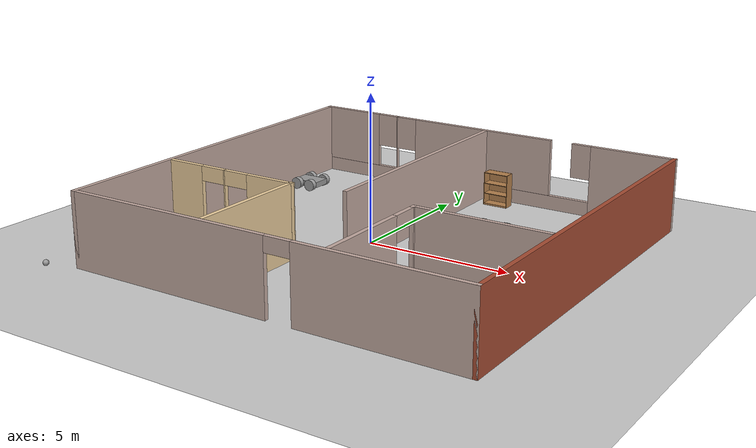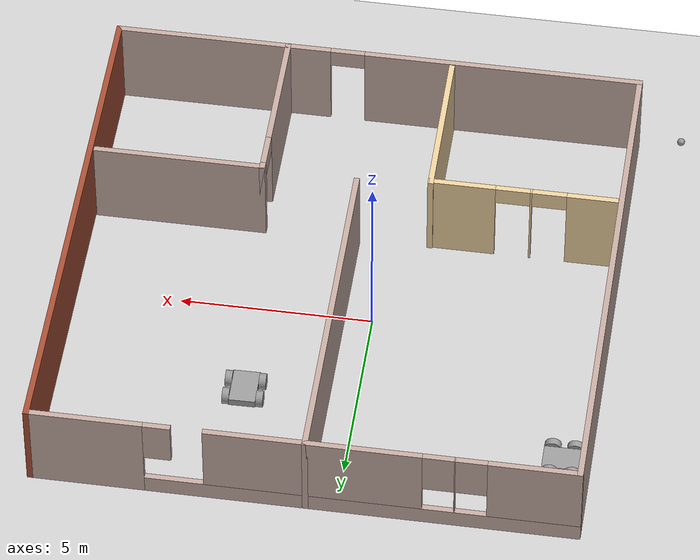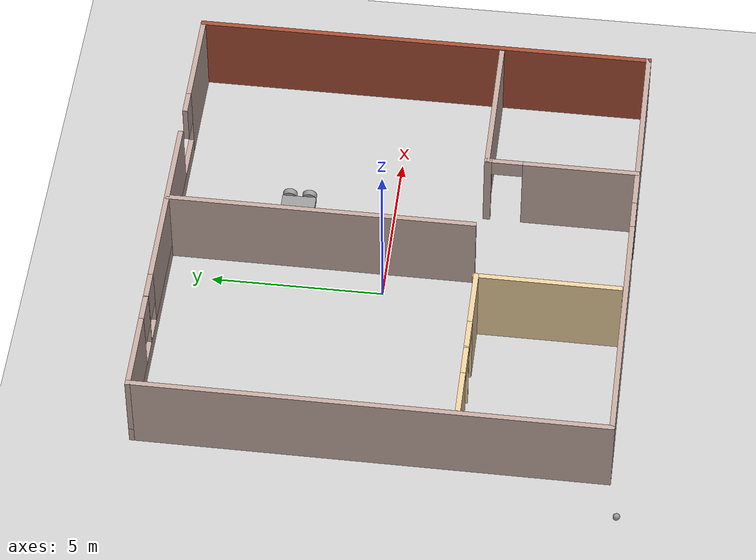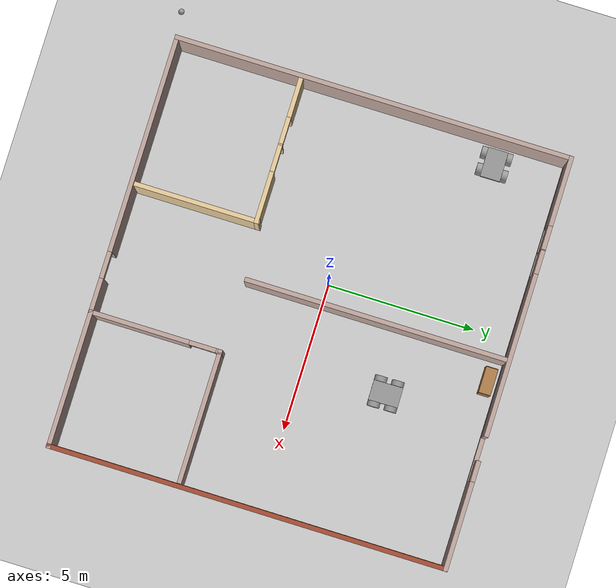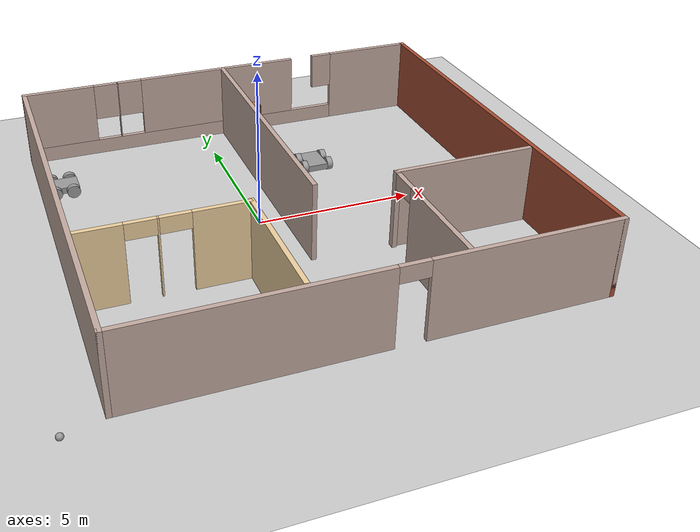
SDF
<sdf version="1.6">
 <world name="default">
  <plugin name="welcome_message" filename="libwelcome_message.so"/>
  <light name="sun" type="directional">
   <pose>0 0 10 0 -0 0</pose>
   <diffuse>0.8 0.8 0.8 1</diffuse>
   <specular>0.1 0.1 0.1 1</specular>
   <attenuation>
    <range>1000</range>
    <constant>0.9</constant>
    <linear>0.01</linear>
    <quadratic>0.001</quadratic>
   </attenuation>
   <direction>-0.5 0.5 -1</direction>
  </light>
  <model name="ground_plane">
   <static>1</static>
   <link name="link">
    <collision name="collision">
     <geometry><plane><normal>0 0 1</normal><size>100 100</size></plane></geometry>
     <surface><friction><ode><mu>100</mu><mu2>50</mu2></ode></friction></surface>
    </collision>
    <visual name="visual">
     <cast_shadows>0</cast_shadows>
     <geometry><plane><normal>0 0 1</normal><size>100 100</size></plane></geometry>
     <material>
      <script><uri>file://media/materials/scripts/gazebo.material</uri><name>Gazebo/Grey</name></script>
     </material>
    </visual>
   </link>
  </model>
  <gravity>0 0 -9.8</gravity>
  <magnetic_field>6e-06 2.3e-05 -4.2e-05</magnetic_field>
  <atmosphere type="adiabatic"/>
  <physics name="default_physics" default="0" type="ode">
   <max_step_size>0.001</max_step_size>
   <real_time_factor>1</real_time_factor>
   <real_time_update_rate>1000</real_time_update_rate>
  </physics>
  <scene><ambient>0.4 0.4 0.4 1</ambient><background>0.7 0.7 0.7 1</background><shadows>1</shadows></scene>
  <spherical_coordinates>
   <surface_model>EARTH_WGS84</surface_model>
   <latitude_deg>0</latitude_deg>
   <longitude_deg>0</longitude_deg>
   <elevation>0</elevation>
   <heading_deg>0</heading_deg>
  </spherical_coordinates>
  <model name="Apartment">
   <pose>0.8489 -0.348456 0.074794 0.001273 -0 0</pose>
   <link name="Wall_0">
    <collision name="Wall_0_Collision">
     <geometry><box><size>13.5 0.15 2.5</size></box></geometry>
     <pose>0 0 1.25 0 -0 0</pose>
    </collision>
    <visual name="Wall_0_Visual">
     <pose>0 0 1.25 0 -0 0</pose>
     <geometry><box><size>13.5 0.15 2.5</size></box></geometry>
     <material>
      <script><uri>file://media/materials/scripts/gazebo.material</uri><name>Gazebo/Grey</name></script>
      <ambient>0.760784 0.662745 0.627451 1</ambient>
     </material>
    </visual>
    <pose>-6.925 0 0 0 0 -1.5708</pose>
   </link>
   <link name="Wall_1">
    <pose>0 -6.675 0 0 -0 0</pose>
    <visual name="Wall_1_Visual_0">
     <pose>-3.31784 0 1.25 0 -0 0</pose>
     <geometry><box><size>7.36433 0.15 2.5</size></box></geometry>
     <material>
      <script><uri>file://media/materials/scripts/gazebo.material</uri><name>Gazebo/Grey</name></script>
      <ambient>0.760784 0.662745 0.627451 1</ambient>
     </material>
    </visual>
    <collision name="Wall_1_Collision_0">
     <geometry><box><size>7.36433 0.15 2.5</size></box></geometry>
     <pose>-3.31784 0 1.25 0 -0 0</pose>
    </collision>
    <visual name="Wall_1_Visual_1">
     <pose>4.13216 0 1.25 0 -0 0</pose>
     <geometry><box><size>5.73567 0.15 2.5</size></box></geometry>
     <material>
      <script><uri>file://media/materials/scripts/gazebo.material</uri><name>Gazebo/Grey</name></script>
      <ambient>0.760784 0.662745 0.627451 1</ambient>
     </material>
    </visual>
    <collision name="Wall_1_Collision_1">
     <geometry><box><size>5.73567 0.15 2.5</size></box></geometry>
     <pose>4.13216 0 1.25 0 -0 0</pose>
    </collision>
    <visual name="Wall_1_Visual_2">
     <pose>0.814328 0 2.25 0 -0 0</pose>
     <geometry><box><size>0.9 0.15 0.5</size></box></geometry>
     <material>
      <script><uri>file://media/materials/scripts/gazebo.material</uri><name>Gazebo/Grey</name></script>
      <ambient>0.760784 0.662745 0.627451 1</ambient>
     </material>
    </visual>
    <collision name="Wall_1_Collision_2">
     <geometry><box><size>0.9 0.15 0.5</size></box></geometry>
     <pose>0.814328 0 2.25 0 -0 0</pose>
    </collision>
   </link>
   <link name="Wall_10">
    <pose>-4.3729 -2.44089 0 0 -0 0</pose>
    <visual name="Wall_10_Visual_0">
     <pose>-1.80534 0 1.25 0 -0 0</pose>
     <geometry><box><size>1.33849 0.15 2.5</size></box></geometry>
     <material>
      <script><uri>file://media/materials/scripts/gazebo.material</uri><name>Gazebo/Grey</name></script>
      <ambient>0.921569 0.807843 0.615686 1</ambient>
     </material>
    </visual>
    <collision name="Wall_10_Collision_0">
     <geometry><box><size>1.33849 0.15 2.5</size></box></geometry>
     <pose>-1.80534 0 1.25 0 -0 0</pose>
    </collision>
    <visual name="Wall_10_Visual_1">
     <pose>-0.211947 0 1.25 0 -0 0</pose>
     <geometry><box><size>0.048297 0.15 2.5</size></box></geometry>
     <material>
      <script><uri>file://media/materials/scripts/gazebo.material</uri><name>Gazebo/Grey</name></script>
      <ambient>0.921569 0.807843 0.615686 1</ambient>
     </material>
    </visual>
    <collision name="Wall_10_Collision_1">
     <geometry><box><size>0.048297 0.15 2.5</size></box></geometry>
     <pose>-0.211947 0 1.25 0 -0 0</pose>
    </collision>
    <visual name="Wall_10_Visual_2">
     <pose>1.59339 0 1.25 0 -0 0</pose>
     <geometry><box><size>1.76239 0.15 2.5</size></box></geometry>
     <material>
      <script><uri>file://media/materials/scripts/gazebo.material</uri><name>Gazebo/Grey</name></script>
      <ambient>0.921569 0.807843 0.615686 1</ambient>
     </material>
    </visual>
    <collision name="Wall_10_Collision_2">
     <geometry><box><size>1.76239 0.15 2.5</size></box></geometry>
     <pose>1.59339 0 1.25 0 -0 0</pose>
    </collision>
    <visual name="Wall_10_Visual_3">
     <pose>-0.686096 0 2.25 0 -0 0</pose>
     <geometry><box><size>0.9 0.15 0.5</size></box></geometry>
     <material>
      <script><uri>file://media/materials/scripts/gazebo.material</uri><name>Gazebo/Grey</name></script>
      <ambient>0.921569 0.807843 0.615686 1</ambient>
     </material>
    </visual>
    <collision name="Wall_10_Collision_3">
     <geometry><box><size>0.9 0.15 0.5</size></box></geometry>
     <pose>-0.686096 0 2.25 0 -0 0</pose>
    </collision>
    <visual name="Wall_10_Visual_4">
     <pose>0.262201 0 2.25 0 -0 0</pose>
     <geometry><box><size>0.9 0.15 0.5</size></box></geometry>
     <material>
      <script><uri>file://media/materials/scripts/gazebo.material</uri><name>Gazebo/Grey</name></script>
      <ambient>0.921569 0.807843 0.615686 1</ambient>
     </material>
    </visual>
    <collision name="Wall_10_Collision_4">
     <geometry><box><size>0.9 0.15 0.5</size></box></geometry>
     <pose>0.262201 0 2.25 0 -0 0</pose>
    </collision>
   </link>
   <link name="Wall_11">
    <collision name="Wall_11_Collision">
     <geometry><box><size>4.25 0.15 2.5</size></box></geometry>
     <pose>0 0 1.25 0 -0 0</pose>
    </collision>
    <visual name="Wall_11_Visual">
     <pose>0 0 1.25 0 -0 0</pose>
     <geometry><box><size>4.25 0.15 2.5</size></box></geometry>
     <material>
      <script><uri>file://media/materials/scripts/gazebo.material</uri><name>Gazebo/Grey</name></script>
      <ambient>0.921569 0.807843 0.615686 1</ambient>
     </material>
    </visual>
    <pose>-1.97375 -4.4603 0 0 0 -1.5708</pose>
   </link>
   <link name="Wall_2">
    <collision name="Wall_2_Collision">
     <geometry><box><size>13.5 0.15 2.5</size></box></geometry>
     <pose>0 0 1.25 0 -0 0</pose>
    </collision>
    <visual name="Wall_2_Visual">
     <pose>0 0 1.25 0 -0 0</pose>
     <geometry><box><size>13.5 0.15 2.5</size></box></geometry>
     <material>
      <script><uri>file://media/materials/scripts/gazebo.material</uri><name>Gazebo/Bricks</name></script>
      <ambient>1 1 1 1</ambient>
     </material>
    </visual>
    <pose>6.925 0 0 0 -0 1.5708</pose>
   </link>
   <link name="Wall_3">
    <pose>0 6.675 0 0 -0 3.14159</pose>
    <visual name="Wall_3_Visual_0">
     <pose>-5.49902 0 1.25 0 -0 0</pose>
     <geometry><box><size>3.00196 0.15 2.5</size></box></geometry>
     <material>
      <script><uri>file://media/materials/scripts/gazebo.material</uri><name>Gazebo/Grey</name></script>
      <ambient>0.760784 0.662745 0.627451 1</ambient>
     </material>
    </visual>
    <collision name="Wall_3_Collision_0">
     <geometry><box><size>3.00196 0.15 2.5</size></box></geometry>
     <pose>-5.49902 0 1.25 0 -0 0</pose>
    </collision>
    <visual name="Wall_3_Visual_1">
     <pose>1.50098 0 0.25 0 -0 0</pose>
     <geometry><box><size>10.998 0.15 0.5</size></box></geometry>
     <material>
      <script><uri>file://media/materials/scripts/gazebo.material</uri><name>Gazebo/Grey</name></script>
      <ambient>0.760784 0.662745 0.627451 1</ambient>
     </material>
    </visual>
    <collision name="Wall_3_Collision_1">
     <geometry><box><size>10.998 0.15 0.5</size></box></geometry>
     <pose>1.50098 0 0.25 0 -0 0</pose>
    </collision>
    <visual name="Wall_3_Visual_2">
     <pose>0.25633 0 1.5 0 -0 0</pose>
     <geometry><box><size>5.50159 0.15 2</size></box></geometry>
     <material>
      <script><uri>file://media/materials/scripts/gazebo.material</uri><name>Gazebo/Grey</name></script>
      <ambient>0.760784 0.662745 0.627451 1</ambient>
     </material>
    </visual>
    <collision name="Wall_3_Collision_2">
     <geometry><box><size>5.50159 0.15 2</size></box></geometry>
     <pose>0.25633 0 1.5 0 -0 0</pose>
    </collision>
    <visual name="Wall_3_Visual_3">
     <pose>3.82009 0 1.5 0 -0 0</pose>
     <geometry><box><size>0.025936 0.15 2</size></box></geometry>
     <material>
      <script><uri>file://media/materials/scripts/gazebo.material</uri><name>Gazebo/Grey</name></script>
      <ambient>0.760784 0.662745 0.627451 1</ambient>
     </material>
    </visual>
    <collision name="Wall_3_Collision_3">
     <geometry><box><size>0.025936 0.15 2</size></box></geometry>
     <pose>3.82009 0 1.5 0 -0 0</pose>
    </collision>
    <visual name="Wall_3_Visual_4">
     <pose>5.81653 0 1.5 0 -0 0</pose>
     <geometry><box><size>2.36694 0.15 2</size></box></geometry>
     <material>
      <script><uri>file://media/materials/scripts/gazebo.material</uri><name>Gazebo/Grey</name></script>
      <ambient>0.760784 0.662745 0.627451 1</ambient>
     </material>
    </visual>
    <collision name="Wall_3_Collision_4">
     <geometry><box><size>2.36694 0.15 2</size></box></geometry>
     <pose>5.81653 0 1.5 0 -0 0</pose>
    </collision>
    <visual name="Wall_3_Visual_5">
     <pose>-3.64625 0 1.9 0 -0 0</pose>
     <geometry><box><size>0.703575 0.15 1.2</size></box></geometry>
     <material>
      <script><uri>file://media/materials/scripts/gazebo.material</uri><name>Gazebo/Grey</name></script>
      <ambient>0.760784 0.662745 0.627451 1</ambient>
     </material>
    </visual>
    <collision name="Wall_3_Collision_5">
     <geometry><box><size>0.703575 0.15 1.2</size></box></geometry>
     <pose>-3.64625 0 1.9 0 -0 0</pose>
    </collision>
    <visual name="Wall_3_Visual_6">
     <pose>3.40712 0 1.9 0 -0 0</pose>
     <geometry><box><size>0.8 0.15 1.2</size></box></geometry>
     <material>
      <script><uri>file://media/materials/scripts/gazebo.material</uri><name>Gazebo/Grey</name></script>
      <ambient>0.760784 0.662745 0.627451 1</ambient>
     </material>
    </visual>
    <collision name="Wall_3_Collision_6">
     <geometry><box><size>0.8 0.15 1.2</size></box></geometry>
     <pose>3.40712 0 1.9 0 -0 0</pose>
    </collision>
    <visual name="Wall_3_Visual_7">
     <pose>4.23306 0 1.9 0 -0 0</pose>
     <geometry><box><size>0.8 0.15 1.2</size></box></geometry>
     <material>
      <script><uri>file://media/materials/scripts/gazebo.material</uri><name>Gazebo/Grey</name></script>
      <ambient>0.760784 0.662745 0.627451 1</ambient>
     </material>
    </visual>
    <collision name="Wall_3_Collision_7">
     <geometry><box><size>0.8 0.15 1.2</size></box></geometry>
     <pose>4.23306 0 1.9 0 -0 0</pose>
    </collision>
   </link>
   <link name="Wall_5">
    <collision name="Wall_5_Collision">
     <geometry><box><size>9 0.15 2.5</size></box></geometry>
     <pose>0 0 1.25 0 -0 0</pose>
    </collision>
    <visual name="Wall_5_Visual">
     <pose>0 0 1.25 0 -0 0</pose>
     <geometry><box><size>9 0.15 2.5</size></box></geometry>
     <material>
      <script><uri>file://media/materials/scripts/gazebo.material</uri><name>Gazebo/Grey</name></script>
      <ambient>0.760784 0.662745 0.627451 1</ambient>
     </material>
    </visual>
    <pose>-0.072789 2.25 0 0 0 -1.5708</pose>
   </link>
   <link name="Wall_7">
    <pose>2.40502 -4.48734 0 0 -0 1.5708</pose>
    <visual name="Wall_7_Visual_0">
     <pose>-0.556201 0 1.25 0 -0 0</pose>
     <geometry><box><size>3.3876 0.15 2.5</size></box></geometry>
     <material>
      <script><uri>file://media/materials/scripts/gazebo.material</uri><name>Gazebo/Grey</name></script>
      <ambient>0.760784 0.662745 0.627451 1</ambient>
     </material>
    </visual>
    <collision name="Wall_7_Collision_0">
     <geometry><box><size>3.3876 0.15 2.5</size></box></geometry>
     <pose>-0.556201 0 1.25 0 -0 0</pose>
    </collision>
    <visual name="Wall_7_Visual_1">
     <pose>2.1438 0 1.25 0 -0 0</pose>
     <geometry><box><size>0.212402 0.15 2.5</size></box></geometry>
     <material>
      <script><uri>file://media/materials/scripts/gazebo.material</uri><name>Gazebo/Grey</name></script>
      <ambient>0.760784 0.662745 0.627451 1</ambient>
     </material>
    </visual>
    <collision name="Wall_7_Collision_1">
     <geometry><box><size>0.212402 0.15 2.5</size></box></geometry>
     <pose>2.1438 0 1.25 0 -0 0</pose>
    </collision>
    <visual name="Wall_7_Visual_2">
     <pose>1.5876 0 2.25 0 -0 0</pose>
     <geometry><box><size>0.9 0.15 0.5</size></box></geometry>
     <material>
      <script><uri>file://media/materials/scripts/gazebo.material</uri><name>Gazebo/Grey</name></script>
      <ambient>0.760784 0.662745 0.627451 1</ambient>
     </material>
    </visual>
    <collision name="Wall_7_Collision_2">
     <geometry><box><size>0.9 0.15 0.5</size></box></geometry>
     <pose>1.5876 0 2.25 0 -0 0</pose>
    </collision>
   </link>
   <link name="Wall_8">
    <collision name="Wall_8_Collision">
     <geometry><box><size>4.5 0.15 2.5</size></box></geometry>
     <pose>0 0 1.25 0 -0 0</pose>
    </collision>
    <visual name="Wall_8_Visual">
     <pose>0 0 1.25 0 -0 0</pose>
     <geometry><box><size>4.5 0.15 2.5</size></box></geometry>
     <material>
      <script><uri>file://media/materials/scripts/gazebo.material</uri><name>Gazebo/Grey</name></script>
      <ambient>0.760784 0.662745 0.627451 1</ambient>
     </material>
    </visual>
    <pose>4.58002 -2.31234 0 0 -0 0</pose>
   </link>
   <static>1</static>
  </model>
  <model name="CartRobot_0">
   <link name="link_0">
    <inertial>
     <mass>0.136311</mass>
     <inertia>
      <ixx>0.00574794</ixx>
      <ixy>0</ixy>
      <ixz>0</ixz>
      <iyy>0.0118121</iyy>
      <iyz>0</iyz>
      <izz>0.0166545</izz>
     </inertia>
    </inertial>
    <visual name="visual">
     <geometry><box><size>1 0.682755 0.199659</size></box></geometry>
     <material>
      <lighting>1</lighting>
      <script><uri>file://media/materials/scripts/gazebo.material</uri><name>Gazebo/Grey</name></script>
      <ambient>0.3 0.3 0.3 1</ambient>
      <diffuse>0.7 0.7 0.7 1</diffuse>
      <specular>0.01 0.01 0.01 1</specular>
      <emissive>0 0 0 1</emissive>
     </material>
    </visual>
    <collision name="collision">
     <geometry><box><size>1 0.682755 0.199659</size></box></geometry>
     <surface>
      <friction>
       <ode><mu>1</mu><mu2>1</mu2><fdir1>0 0 0</fdir1><slip1>0</slip1><slip2>0</slip2></ode>
       <torsional>
        <coefficient>1</coefficient>
        <patch_radius>0</patch_radius>
        <surface_radius>0</surface_radius>
        <use_patch_radius>1</use_patch_radius>
        <ode><slip>0</slip></ode>
       </torsional>
      </friction>
      <bounce><restitution_coefficient>0</restitution_coefficient><threshold>1e+06</threshold></bounce>
      <contact>
       <collide_without_contact>0</collide_without_contact>
       <collide_without_contact_bitmask>1</collide_without_contact_bitmask>
       <collide_bitmask>1</collide_bitmask>
       <ode>
        <soft_cfm>0</soft_cfm>
        <soft_erp>0.2</soft_erp>
        <kp>1e+13</kp>
        <kd>1</kd>
        <max_vel>0.01</max_vel>
        <min_depth>0</min_depth>
       </ode>
       <bullet>
        <split_impulse>1</split_impulse>
        <split_impulse_penetration_threshold>-0.01</split_impulse_penetration_threshold>
        <soft_cfm>0</soft_cfm>
        <soft_erp>0.2</soft_erp>
        <kp>1e+13</kp>
        <kd>1</kd>
       </bullet>
      </contact>
     </surface>
    </collision>
   </link>
   <link name="link_1">
    <pose>-0.288872 0.43372 0 -1.56512 0 0</pose>
    <inertial>
     <mass>0.0325067</mass>
     <inertia>
      <ixx>0.000452309</ixx>
      <ixy>0</ixy>
      <ixz>0</ixz>
      <iyy>0.000452309</iyy>
      <iyz>0</iyz>
      <izz>0.000724583</izz>
     </inertia>
    </inertial>
    <visual name="visual">
     <geometry><cylinder><radius>0.211128</radius><length>0.182292</length></cylinder></geometry>
     <material>
      <lighting>1</lighting>
      <script><uri>file://media/materials/scripts/gazebo.material</uri><name>Gazebo/Grey</name></script>
      <ambient>0.3 0.3 0.3 1</ambient>
      <diffuse>0.7 0.7 0.7 1</diffuse>
      <specular>0.01 0.01 0.01 1</specular>
      <emissive>0 0 0 1</emissive>
     </material>
    </visual>
    <collision name="collision">
     <geometry><cylinder><radius>0.211128</radius><length>0.182292</length></cylinder></geometry>
     <surface>
      <friction>
       <ode><mu>1</mu><mu2>1</mu2><fdir1>0 0 0</fdir1><slip1>0</slip1><slip2>0</slip2></ode>
       <torsional>
        <coefficient>1</coefficient>
        <patch_radius>0</patch_radius>
        <surface_radius>0</surface_radius>
        <use_patch_radius>1</use_patch_radius>
        <ode><slip>0</slip></ode>
       </torsional>
      </friction>
      <bounce><restitution_coefficient>0</restitution_coefficient><threshold>1e+06</threshold></bounce>
      <contact>
       <collide_without_contact>0</collide_without_contact>
       <collide_without_contact_bitmask>1</collide_without_contact_bitmask>
       <collide_bitmask>1</collide_bitmask>
       <ode>
        <soft_cfm>0</soft_cfm>
        <soft_erp>0.2</soft_erp>
        <kp>1e+13</kp>
        <kd>1</kd>
        <max_vel>0.01</max_vel>
        <min_depth>0</min_depth>
       </ode>
       <bullet>
        <split_impulse>1</split_impulse>
        <split_impulse_penetration_threshold>-0.01</split_impulse_penetration_threshold>
        <soft_cfm>0</soft_cfm>
        <soft_erp>0.2</soft_erp>
        <kp>1e+13</kp>
        <kd>1</kd>
       </bullet>
      </contact>
     </surface>
    </collision>
   </link>
   <link name="link_1_clone">
    <pose>0.288872 0.43372 0 -1.56512 0 0</pose>
    <inertial>
     <mass>0.0325067</mass>
     <inertia>
      <ixx>0.000452309</ixx>
      <ixy>0</ixy>
      <ixz>0</ixz>
      <iyy>0.000452309</iyy>
      <iyz>0</iyz>
      <izz>0.000724583</izz>
     </inertia>
    </inertial>
    <visual name="visual">
     <geometry><cylinder><radius>0.211128</radius><length>0.182292</length></cylinder></geometry>
     <material>
      <lighting>1</lighting>
      <script><uri>file://media/materials/scripts/gazebo.material</uri><name>Gazebo/Grey</name></script>
      <ambient>0.3 0.3 0.3 1</ambient>
      <diffuse>0.7 0.7 0.7 1</diffuse>
      <specular>0.01 0.01 0.01 1</specular>
      <emissive>0 0 0 1</emissive>
      <shader type="pixel"/>
     </material>
    </visual>
    <collision name="collision">
     <geometry><cylinder><radius>0.211128</radius><length>0.182292</length></cylinder></geometry>
     <surface>
      <friction>
       <ode><mu>1</mu><mu2>1</mu2><fdir1>0 0 0</fdir1><slip1>0</slip1><slip2>0</slip2></ode>
       <torsional>
        <coefficient>1</coefficient>
        <patch_radius>0</patch_radius>
        <surface_radius>0</surface_radius>
        <use_patch_radius>1</use_patch_radius>
        <ode><slip>0</slip></ode>
       </torsional>
      </friction>
      <bounce><restitution_coefficient>0</restitution_coefficient><threshold>1e+06</threshold></bounce>
      <contact>
       <collide_without_contact>0</collide_without_contact>
       <collide_without_contact_bitmask>1</collide_without_contact_bitmask>
       <collide_bitmask>1</collide_bitmask>
       <ode>
        <soft_cfm>0</soft_cfm>
        <soft_erp>0.2</soft_erp>
        <kp>1e+13</kp>
        <kd>1</kd>
        <max_vel>0.01</max_vel>
        <min_depth>0</min_depth>
       </ode>
       <bullet>
        <split_impulse>1</split_impulse>
        <split_impulse_penetration_threshold>-0.01</split_impulse_penetration_threshold>
        <soft_cfm>0</soft_cfm>
        <soft_erp>0.2</soft_erp>
        <kp>1e+13</kp>
        <kd>1</kd>
       </bullet>
      </contact>
     </surface>
    </collision>
   </link>
   <link name="link_1_clone_0">
    <pose>-0.288872 -0.433721 0 -1.56512 0 0</pose>
    <inertial>
     <mass>0.0325067</mass>
     <inertia>
      <ixx>0.000452309</ixx>
      <ixy>0</ixy>
      <ixz>0</ixz>
      <iyy>0.000452309</iyy>
      <iyz>0</iyz>
      <izz>0.000724583</izz>
     </inertia>
    </inertial>
    <visual name="visual">
     <geometry><cylinder><radius>0.211128</radius><length>0.182292</length></cylinder></geometry>
     <material>
      <lighting>1</lighting>
      <script><uri>file://media/materials/scripts/gazebo.material</uri><name>Gazebo/Grey</name></script>
      <ambient>0.3 0.3 0.3 1</ambient>
      <diffuse>0.7 0.7 0.7 1</diffuse>
      <specular>0.01 0.01 0.01 1</specular>
      <emissive>0 0 0 1</emissive>
      <shader type="pixel"/>
     </material>
    </visual>
    <collision name="collision">
     <geometry><cylinder><radius>0.211128</radius><length>0.182292</length></cylinder></geometry>
     <surface>
      <friction>
       <ode><mu>1</mu><mu2>1</mu2><fdir1>0 0 0</fdir1><slip1>0</slip1><slip2>0</slip2></ode>
       <torsional>
        <coefficient>1</coefficient>
        <patch_radius>0</patch_radius>
        <surface_radius>0</surface_radius>
        <use_patch_radius>1</use_patch_radius>
        <ode><slip>0</slip></ode>
       </torsional>
      </friction>
      <bounce><restitution_coefficient>0</restitution_coefficient><threshold>1e+06</threshold></bounce>
      <contact>
       <collide_without_contact>0</collide_without_contact>
       <collide_without_contact_bitmask>1</collide_without_contact_bitmask>
       <collide_bitmask>1</collide_bitmask>
       <ode>
        <soft_cfm>0</soft_cfm>
        <soft_erp>0.2</soft_erp>
        <kp>1e+13</kp>
        <kd>1</kd>
        <max_vel>0.01</max_vel>
        <min_depth>0</min_depth>
       </ode>
       <bullet>
        <split_impulse>1</split_impulse>
        <split_impulse_penetration_threshold>-0.01</split_impulse_penetration_threshold>
        <soft_cfm>0</soft_cfm>
        <soft_erp>0.2</soft_erp>
        <kp>1e+13</kp>
        <kd>1</kd>
       </bullet>
      </contact>
     </surface>
    </collision>
   </link>
   <link name="link_1_clone_1">
    <pose>0.288872 -0.433721 0 -1.56512 0 0</pose>
    <inertial>
     <mass>0.0325067</mass>
     <inertia>
      <ixx>0.000452309</ixx>
      <ixy>0</ixy>
      <ixz>0</ixz>
      <iyy>0.000452309</iyy>
      <iyz>0</iyz>
      <izz>0.000724583</izz>
     </inertia>
    </inertial>
    <visual name="visual">
     <geometry><cylinder><radius>0.211128</radius><length>0.182292</length></cylinder></geometry>
     <material>
      <lighting>1</lighting>
      <script><uri>file://media/materials/scripts/gazebo.material</uri><name>Gazebo/Grey</name></script>
      <ambient>0.3 0.3 0.3 1</ambient>
      <diffuse>0.7 0.7 0.7 1</diffuse>
      <specular>0.01 0.01 0.01 1</specular>
      <emissive>0 0 0 1</emissive>
      <shader type="pixel"/>
     </material>
    </visual>
    <collision name="collision">
     <geometry><cylinder><radius>0.211128</radius><length>0.182292</length></cylinder></geometry>
     <surface>
      <friction>
       <ode><mu>1</mu><mu2>1</mu2><fdir1>0 0 0</fdir1><slip1>0</slip1><slip2>0</slip2></ode>
       <torsional>
        <coefficient>1</coefficient>
        <patch_radius>0</patch_radius>
        <surface_radius>0</surface_radius>
        <use_patch_radius>1</use_patch_radius>
        <ode><slip>0</slip></ode>
       </torsional>
      </friction>
      <bounce><restitution_coefficient>0</restitution_coefficient><threshold>1e+06</threshold></bounce>
      <contact>
       <collide_without_contact>0</collide_without_contact>
       <collide_without_contact_bitmask>1</collide_without_contact_bitmask>
       <collide_bitmask>1</collide_bitmask>
       <ode>
        <soft_cfm>0</soft_cfm>
        <soft_erp>0.2</soft_erp>
        <kp>1e+13</kp>
        <kd>1</kd>
        <max_vel>0.01</max_vel>
        <min_depth>0</min_depth>
       </ode>
       <bullet>
        <split_impulse>1</split_impulse>
        <split_impulse_penetration_threshold>-0.01</split_impulse_penetration_threshold>
        <soft_cfm>0</soft_cfm>
        <soft_erp>0.2</soft_erp>
        <kp>1e+13</kp>
        <kd>1</kd>
       </bullet>
      </contact>
     </surface>
    </collision>
   </link>
   <joint name="link_0_JOINT_0" type="revolute">
    <parent>link_0</parent>
    <child>link_1</child>
    <axis>
     <xyz>0 0 1</xyz>
     <use_parent_model_frame>0</use_parent_model_frame>
     <limit>
      <lower>-1.79769e+308</lower>
      <upper>1.79769e+308</upper>
      <effort>-1</effort>
      <velocity>-1</velocity>
     </limit>
     <dynamics>
      <spring_reference>0</spring_reference>
      <spring_stiffness>0</spring_stiffness>
      <damping>0</damping>
     </dynamics>
    </axis>
    <physics>
     <ode><limit><cfm>0</cfm><erp>0.2</erp></limit><suspension><cfm>0</cfm><erp>0.2</erp></suspension></ode>
    </physics>
   </joint>
   <joint name="link_0_JOINT_1" type="revolute">
    <parent>link_0</parent>
    <child>link_1_clone</child>
    <axis>
     <xyz>0 0 1</xyz>
     <use_parent_model_frame>0</use_parent_model_frame>
     <limit>
      <lower>-1.79769e+308</lower>
      <upper>1.79769e+308</upper>
      <effort>-1</effort>
      <velocity>-1</velocity>
     </limit>
     <dynamics>
      <spring_reference>0</spring_reference>
      <spring_stiffness>0</spring_stiffness>
      <damping>0</damping>
     </dynamics>
    </axis>
    <physics>
     <ode><limit><cfm>0</cfm><erp>0.2</erp></limit><suspension><cfm>0</cfm><erp>0.2</erp></suspension></ode>
    </physics>
   </joint>
   <joint name="link_0_JOINT_2" type="revolute">
    <parent>link_0</parent>
    <child>link_1_clone_0</child>
    <axis>
     <xyz>0 0 -1</xyz>
     <use_parent_model_frame>0</use_parent_model_frame>
     <limit>
      <lower>-1.79769e+308</lower>
      <upper>1.79769e+308</upper>
      <effort>-1</effort>
      <velocity>-1</velocity>
     </limit>
     <dynamics>
      <spring_reference>0</spring_reference>
      <spring_stiffness>0</spring_stiffness>
      <damping>0</damping>
     </dynamics>
    </axis>
    <physics>
     <ode><limit><cfm>0</cfm><erp>0.2</erp></limit><suspension><cfm>0</cfm><erp>0.2</erp></suspension></ode>
    </physics>
   </joint>
   <joint name="link_0_JOINT_3" type="revolute">
    <parent>link_0</parent>
    <child>link_1_clone_1</child>
    <axis>
     <xyz>0 0 -1</xyz>
     <use_parent_model_frame>0</use_parent_model_frame>
     <limit>
      <lower>-1.79769e+308</lower>
      <upper>1.79769e+308</upper>
      <effort>-1</effort>
      <velocity>-1</velocity>
     </limit>
     <dynamics>
      <spring_reference>0</spring_reference>
      <spring_stiffness>0</spring_stiffness>
      <damping>0</damping>
     </dynamics>
    </axis>
    <physics>
     <ode><limit><cfm>0</cfm><erp>0.2</erp></limit><suspension><cfm>0</cfm><erp>0.2</erp></suspension></ode>
    </physics>
   </joint>
   <static>0</static>
   <pose>2.87718 2.85725 0.211636 8e-06 3e-06 -1.5552</pose>
  </model>
  <model name="CartRobot_1">
   <link name="link_0">
    <inertial>
     <mass>0.136311</mass>
     <inertia>
      <ixx>0.00574794</ixx>
      <ixy>0</ixy>
      <ixz>0</ixz>
      <iyy>0.0118121</iyy>
      <iyz>0</iyz>
      <izz>0.0166545</izz>
     </inertia>
    </inertial>
    <visual name="visual">
     <geometry><box><size>1 0.682755 0.199659</size></box></geometry>
     <material>
      <lighting>1</lighting>
      <script><uri>file://media/materials/scripts/gazebo.material</uri><name>Gazebo/Grey</name></script>
      <ambient>0.3 0.3 0.3 1</ambient>
      <diffuse>0.7 0.7 0.7 1</diffuse>
      <specular>0.01 0.01 0.01 1</specular>
      <emissive>0 0 0 1</emissive>
     </material>
    </visual>
    <collision name="collision">
     <geometry><box><size>1 0.682755 0.199659</size></box></geometry>
     <surface>
      <friction>
       <ode><mu>1</mu><mu2>1</mu2><fdir1>0 0 0</fdir1><slip1>0</slip1><slip2>0</slip2></ode>
       <torsional>
        <coefficient>1</coefficient>
        <patch_radius>0</patch_radius>
        <surface_radius>0</surface_radius>
        <use_patch_radius>1</use_patch_radius>
        <ode><slip>0</slip></ode>
       </torsional>
      </friction>
      <bounce><restitution_coefficient>0</restitution_coefficient><threshold>1e+06</threshold></bounce>
      <contact>
       <collide_without_contact>0</collide_without_contact>
       <collide_without_contact_bitmask>1</collide_without_contact_bitmask>
       <collide_bitmask>1</collide_bitmask>
       <ode>
        <soft_cfm>0</soft_cfm>
        <soft_erp>0.2</soft_erp>
        <kp>1e+13</kp>
        <kd>1</kd>
        <max_vel>0.01</max_vel>
        <min_depth>0</min_depth>
       </ode>
       <bullet>
        <split_impulse>1</split_impulse>
        <split_impulse_penetration_threshold>-0.01</split_impulse_penetration_threshold>
        <soft_cfm>0</soft_cfm>
        <soft_erp>0.2</soft_erp>
        <kp>1e+13</kp>
        <kd>1</kd>
       </bullet>
      </contact>
     </surface>
    </collision>
   </link>
   <link name="link_1">
    <pose>-0.288872 0.43372 0 -1.56512 0 0</pose>
    <inertial>
     <mass>0.0325067</mass>
     <inertia>
      <ixx>0.000452309</ixx>
      <ixy>0</ixy>
      <ixz>0</ixz>
      <iyy>0.000452309</iyy>
      <iyz>0</iyz>
      <izz>0.000724583</izz>
     </inertia>
    </inertial>
    <visual name="visual">
     <geometry><cylinder><radius>0.211128</radius><length>0.182292</length></cylinder></geometry>
     <material>
      <lighting>1</lighting>
      <script><uri>file://media/materials/scripts/gazebo.material</uri><name>Gazebo/Grey</name></script>
      <ambient>0.3 0.3 0.3 1</ambient>
      <diffuse>0.7 0.7 0.7 1</diffuse>
      <specular>0.01 0.01 0.01 1</specular>
      <emissive>0 0 0 1</emissive>
     </material>
    </visual>
    <collision name="collision">
     <geometry><cylinder><radius>0.211128</radius><length>0.182292</length></cylinder></geometry>
     <surface>
      <friction>
       <ode><mu>1</mu><mu2>1</mu2><fdir1>0 0 0</fdir1><slip1>0</slip1><slip2>0</slip2></ode>
       <torsional>
        <coefficient>1</coefficient>
        <patch_radius>0</patch_radius>
        <surface_radius>0</surface_radius>
        <use_patch_radius>1</use_patch_radius>
        <ode><slip>0</slip></ode>
       </torsional>
      </friction>
      <bounce><restitution_coefficient>0</restitution_coefficient><threshold>1e+06</threshold></bounce>
      <contact>
       <collide_without_contact>0</collide_without_contact>
       <collide_without_contact_bitmask>1</collide_without_contact_bitmask>
       <collide_bitmask>1</collide_bitmask>
       <ode>
        <soft_cfm>0</soft_cfm>
        <soft_erp>0.2</soft_erp>
        <kp>1e+13</kp>
        <kd>1</kd>
        <max_vel>0.01</max_vel>
        <min_depth>0</min_depth>
       </ode>
       <bullet>
        <split_impulse>1</split_impulse>
        <split_impulse_penetration_threshold>-0.01</split_impulse_penetration_threshold>
        <soft_cfm>0</soft_cfm>
        <soft_erp>0.2</soft_erp>
        <kp>1e+13</kp>
        <kd>1</kd>
       </bullet>
      </contact>
     </surface>
    </collision>
   </link>
   <link name="link_1_clone">
    <pose>0.288872 0.43372 0 -1.56512 0 0</pose>
    <inertial>
     <mass>0.0325067</mass>
     <inertia>
      <ixx>0.000452309</ixx>
      <ixy>0</ixy>
      <ixz>0</ixz>
      <iyy>0.000452309</iyy>
      <iyz>0</iyz>
      <izz>0.000724583</izz>
     </inertia>
    </inertial>
    <visual name="visual">
     <geometry><cylinder><radius>0.211128</radius><length>0.182292</length></cylinder></geometry>
     <material>
      <lighting>1</lighting>
      <script><uri>file://media/materials/scripts/gazebo.material</uri><name>Gazebo/Grey</name></script>
      <ambient>0.3 0.3 0.3 1</ambient>
      <diffuse>0.7 0.7 0.7 1</diffuse>
      <specular>0.01 0.01 0.01 1</specular>
      <emissive>0 0 0 1</emissive>
      <shader type="pixel"/>
     </material>
    </visual>
    <collision name="collision">
     <geometry><cylinder><radius>0.211128</radius><length>0.182292</length></cylinder></geometry>
     <surface>
      <friction>
       <ode><mu>1</mu><mu2>1</mu2><fdir1>0 0 0</fdir1><slip1>0</slip1><slip2>0</slip2></ode>
       <torsional>
        <coefficient>1</coefficient>
        <patch_radius>0</patch_radius>
        <surface_radius>0</surface_radius>
        <use_patch_radius>1</use_patch_radius>
        <ode><slip>0</slip></ode>
       </torsional>
      </friction>
      <bounce><restitution_coefficient>0</restitution_coefficient><threshold>1e+06</threshold></bounce>
      <contact>
       <collide_without_contact>0</collide_without_contact>
       <collide_without_contact_bitmask>1</collide_without_contact_bitmask>
       <collide_bitmask>1</collide_bitmask>
       <ode>
        <soft_cfm>0</soft_cfm>
        <soft_erp>0.2</soft_erp>
        <kp>1e+13</kp>
        <kd>1</kd>
        <max_vel>0.01</max_vel>
        <min_depth>0</min_depth>
       </ode>
       <bullet>
        <split_impulse>1</split_impulse>
        <split_impulse_penetration_threshold>-0.01</split_impulse_penetration_threshold>
        <soft_cfm>0</soft_cfm>
        <soft_erp>0.2</soft_erp>
        <kp>1e+13</kp>
        <kd>1</kd>
       </bullet>
      </contact>
     </surface>
    </collision>
   </link>
   <link name="link_1_clone_0">
    <pose>-0.288872 -0.433721 0 -1.56512 0 0</pose>
    <inertial>
     <mass>0.0325067</mass>
     <inertia>
      <ixx>0.000452309</ixx>
      <ixy>0</ixy>
      <ixz>0</ixz>
      <iyy>0.000452309</iyy>
      <iyz>0</iyz>
      <izz>0.000724583</izz>
     </inertia>
    </inertial>
    <visual name="visual">
     <geometry><cylinder><radius>0.211128</radius><length>0.182292</length></cylinder></geometry>
     <material>
      <lighting>1</lighting>
      <script><uri>file://media/materials/scripts/gazebo.material</uri><name>Gazebo/Grey</name></script>
      <ambient>0.3 0.3 0.3 1</ambient>
      <diffuse>0.7 0.7 0.7 1</diffuse>
      <specular>0.01 0.01 0.01 1</specular>
      <emissive>0 0 0 1</emissive>
      <shader type="pixel"/>
     </material>
    </visual>
    <collision name="collision">
     <geometry><cylinder><radius>0.211128</radius><length>0.182292</length></cylinder></geometry>
     <surface>
      <friction>
       <ode><mu>1</mu><mu2>1</mu2><fdir1>0 0 0</fdir1><slip1>0</slip1><slip2>0</slip2></ode>
       <torsional>
        <coefficient>1</coefficient>
        <patch_radius>0</patch_radius>
        <surface_radius>0</surface_radius>
        <use_patch_radius>1</use_patch_radius>
        <ode><slip>0</slip></ode>
       </torsional>
      </friction>
      <bounce><restitution_coefficient>0</restitution_coefficient><threshold>1e+06</threshold></bounce>
      <contact>
       <collide_without_contact>0</collide_without_contact>
       <collide_without_contact_bitmask>1</collide_without_contact_bitmask>
       <collide_bitmask>1</collide_bitmask>
       <ode>
        <soft_cfm>0</soft_cfm>
        <soft_erp>0.2</soft_erp>
        <kp>1e+13</kp>
        <kd>1</kd>
        <max_vel>0.01</max_vel>
        <min_depth>0</min_depth>
       </ode>
       <bullet>
        <split_impulse>1</split_impulse>
        <split_impulse_penetration_threshold>-0.01</split_impulse_penetration_threshold>
        <soft_cfm>0</soft_cfm>
        <soft_erp>0.2</soft_erp>
        <kp>1e+13</kp>
        <kd>1</kd>
       </bullet>
      </contact>
     </surface>
    </collision>
   </link>
   <link name="link_1_clone_1">
    <pose>0.288872 -0.433721 0 -1.56512 0 0</pose>
    <inertial>
     <mass>0.0325067</mass>
     <inertia>
      <ixx>0.000452309</ixx>
      <ixy>0</ixy>
      <ixz>0</ixz>
      <iyy>0.000452309</iyy>
      <iyz>0</iyz>
      <izz>0.000724583</izz>
     </inertia>
    </inertial>
    <visual name="visual">
     <geometry><cylinder><radius>0.211128</radius><length>0.182292</length></cylinder></geometry>
     <material>
      <lighting>1</lighting>
      <script><uri>file://media/materials/scripts/gazebo.material</uri><name>Gazebo/Grey</name></script>
      <ambient>0.3 0.3 0.3 1</ambient>
      <diffuse>0.7 0.7 0.7 1</diffuse>
      <specular>0.01 0.01 0.01 1</specular>
      <emissive>0 0 0 1</emissive>
      <shader type="pixel"/>
     </material>
    </visual>
    <collision name="collision">
     <geometry><cylinder><radius>0.211128</radius><length>0.182292</length></cylinder></geometry>
     <surface>
      <friction>
       <ode><mu>1</mu><mu2>1</mu2><fdir1>0 0 0</fdir1><slip1>0</slip1><slip2>0</slip2></ode>
       <torsional>
        <coefficient>1</coefficient>
        <patch_radius>0</patch_radius>
        <surface_radius>0</surface_radius>
        <use_patch_radius>1</use_patch_radius>
        <ode><slip>0</slip></ode>
       </torsional>
      </friction>
      <bounce><restitution_coefficient>0</restitution_coefficient><threshold>1e+06</threshold></bounce>
      <contact>
       <collide_without_contact>0</collide_without_contact>
       <collide_without_contact_bitmask>1</collide_without_contact_bitmask>
       <collide_bitmask>1</collide_bitmask>
       <ode>
        <soft_cfm>0</soft_cfm>
        <soft_erp>0.2</soft_erp>
        <kp>1e+13</kp>
        <kd>1</kd>
        <max_vel>0.01</max_vel>
        <min_depth>0</min_depth>
       </ode>
       <bullet>
        <split_impulse>1</split_impulse>
        <split_impulse_penetration_threshold>-0.01</split_impulse_penetration_threshold>
        <soft_cfm>0</soft_cfm>
        <soft_erp>0.2</soft_erp>
        <kp>1e+13</kp>
        <kd>1</kd>
       </bullet>
      </contact>
     </surface>
    </collision>
   </link>
   <joint name="link_0_JOINT_0" type="revolute">
    <parent>link_0</parent>
    <child>link_1</child>
    <axis>
     <xyz>0 0 1</xyz>
     <use_parent_model_frame>0</use_parent_model_frame>
     <limit>
      <lower>-1.79769e+308</lower>
      <upper>1.79769e+308</upper>
      <effort>-1</effort>
      <velocity>-1</velocity>
     </limit>
     <dynamics>
      <spring_reference>0</spring_reference>
      <spring_stiffness>0</spring_stiffness>
      <damping>0</damping>
     </dynamics>
    </axis>
    <physics>
     <ode><limit><cfm>0</cfm><erp>0.2</erp></limit><suspension><cfm>0</cfm><erp>0.2</erp></suspension></ode>
    </physics>
   </joint>
   <joint name="link_0_JOINT_1" type="revolute">
    <parent>link_0</parent>
    <child>link_1_clone</child>
    <axis>
     <xyz>0 0 1</xyz>
     <use_parent_model_frame>0</use_parent_model_frame>
     <limit>
      <lower>-1.79769e+308</lower>
      <upper>1.79769e+308</upper>
      <effort>-1</effort>
      <velocity>-1</velocity>
     </limit>
     <dynamics>
      <spring_reference>0</spring_reference>
      <spring_stiffness>0</spring_stiffness>
      <damping>0</damping>
     </dynamics>
    </axis>
    <physics>
     <ode><limit><cfm>0</cfm><erp>0.2</erp></limit><suspension><cfm>0</cfm><erp>0.2</erp></suspension></ode>
    </physics>
   </joint>
   <joint name="link_0_JOINT_2" type="revolute">
    <parent>link_0</parent>
    <child>link_1_clone_0</child>
    <axis>
     <xyz>0 0 -1</xyz>
     <use_parent_model_frame>0</use_parent_model_frame>
     <limit>
      <lower>-1.79769e+308</lower>
      <upper>1.79769e+308</upper>
      <effort>-1</effort>
      <velocity>-1</velocity>
     </limit>
     <dynamics>
      <spring_reference>0</spring_reference>
      <spring_stiffness>0</spring_stiffness>
      <damping>0</damping>
     </dynamics>
    </axis>
    <physics>
     <ode><limit><cfm>0</cfm><erp>0.2</erp></limit><suspension><cfm>0</cfm><erp>0.2</erp></suspension></ode>
    </physics>
   </joint>
   <joint name="link_0_JOINT_3" type="revolute">
    <parent>link_0</parent>
    <child>link_1_clone_1</child>
    <axis>
     <xyz>0 0 -1</xyz>
     <use_parent_model_frame>0</use_parent_model_frame>
     <limit>
      <lower>-1.79769e+308</lower>
      <upper>1.79769e+308</upper>
      <effort>-1</effort>
      <velocity>-1</velocity>
     </limit>
     <dynamics>
      <spring_reference>0</spring_reference>
      <spring_stiffness>0</spring_stiffness>
      <damping>0</damping>
     </dynamics>
    </axis>
    <physics>
     <ode><limit><cfm>0</cfm><erp>0.2</erp></limit><suspension><cfm>0</cfm><erp>0.2</erp></suspension></ode>
    </physics>
   </joint>
   <static>0</static>
   <pose>-5.42315 4.05232 0.211636 8e-06 3e-06 0.006881</pose>
  </model>
  <model name="bookshelf_0">
   <static>1</static>
   <link name="link">
    <inertial><mass>1</mass></inertial>
    <collision name="back">
     <pose>0 0.005 0.6 0 -0 0</pose>
     <geometry><box><size>0.9 0.01 1.2</size></box></geometry>
    </collision>
    <visual name="visual1">
     <pose>0 0.005 0.6 0 -0 0</pose>
     <geometry><box><size>0.9 0.01 1.2</size></box></geometry>
     <material>
      <script><uri>file://media/materials/scripts/gazebo.material</uri><name>Gazebo/Wood</name></script>
     </material>
    </visual>
    <collision name="left_side">
     <pose>0.45 -0.195 0.6 0 -0 0</pose>
     <geometry><box><size>0.02 0.4 1.2</size></box></geometry>
    </collision>
    <visual name="visual2">
     <pose>0.45 -0.195 0.6 0 -0 0</pose>
     <geometry><box><size>0.02 0.4 1.2</size></box></geometry>
     <material>
      <script><uri>file://media/materials/scripts/gazebo.material</uri><name>Gazebo/Wood</name></script>
     </material>
    </visual>
    <collision name="right_side">
     <pose>-0.45 -0.195 0.6 0 -0 0</pose>
     <geometry><box><size>0.02 0.4 1.2</size></box></geometry>
    </collision>
    <visual name="visual3">
     <pose>-0.45 -0.195 0.6 0 -0 0</pose>
     <geometry><box><size>0.02 0.4 1.2</size></box></geometry>
     <material>
      <script><uri>file://media/materials/scripts/gazebo.material</uri><name>Gazebo/Wood</name></script>
     </material>
    </visual>
    <collision name="bottom">
     <pose>0 -0.195 0.03 0 -0 0</pose>
     <geometry><box><size>0.88 0.4 0.06</size></box></geometry>
    </collision>
    <visual name="visual4">
     <pose>0 -0.195 0.03 0 -0 0</pose>
     <geometry><box><size>0.88 0.4 0.06</size></box></geometry>
     <material>
      <script><uri>file://media/materials/scripts/gazebo.material</uri><name>Gazebo/Wood</name></script>
     </material>
    </visual>
    <collision name="top">
     <pose>0 -0.195 1.19 0 -0 0</pose>
     <geometry><box><size>0.88 0.4 0.02</size></box></geometry>
    </collision>
    <visual name="visual5">
     <pose>0 -0.195 1.19 0 -0 0</pose>
     <geometry><box><size>0.88 0.4 0.02</size></box></geometry>
     <material>
      <script><uri>file://media/materials/scripts/gazebo.material</uri><name>Gazebo/Wood</name></script>
     </material>
    </visual>
    <collision name="low_shelf">
     <pose>0 -0.195 0.43 0 -0 0</pose>
     <geometry><box><size>0.88 0.4 0.02</size></box></geometry>
    </collision>
    <visual name="visual6">
     <pose>0 -0.195 0.43 0 -0 0</pose>
     <geometry><box><size>0.88 0.4 0.02</size></box></geometry>
     <material>
      <script><uri>file://media/materials/scripts/gazebo.material</uri><name>Gazebo/Wood</name></script>
     </material>
    </visual>
    <collision name="high_shelf">
     <pose>0 -0.195 0.8 0 -0 0</pose>
     <geometry><box><size>0.88 0.4 0.02</size></box></geometry>
    </collision>
    <visual name="visual7">
     <pose>0 -0.195 0.8 0 -0 0</pose>
     <geometry><box><size>0.88 0.4 0.02</size></box></geometry>
     <material>
      <script><uri>file://media/materials/scripts/gazebo.material</uri><name>Gazebo/Wood</name></script>
     </material>
    </visual>
   </link>
   <pose>1.525 6.11719 0 0 -0 0</pose>
  </model>
  <model name="my_ball">
   <link name="link_0">
    <inertial>
     <mass>1</mass>
     <inertia><ixx>0.1</ixx><ixy>0</ixy><ixz>0</ixz><iyy>0.1</iyy><iyz>0</iyz><izz>0.1</izz></inertia>
    </inertial>
    <visual name="visual">
     <geometry><sphere><radius>0.1</radius></sphere></geometry>
     <material>
      <lighting>1</lighting>
      <script><uri>file://media/materials/scripts/gazebo.material</uri><name>Gazebo/Grey</name></script>
      <ambient>1 1 1 1</ambient>
      <diffuse>1 1 1 1</diffuse>
      <specular>1 1 1 1</specular>
      <emissive>1 1 1 1</emissive>
      <shader type="vertex"><normal_map>__default__</normal_map></shader>
     </material>
    </visual>
    <collision name="collision">
     <geometry><sphere><radius>0.1</radius></sphere></geometry>
     <surface>
      <friction>
       <ode><mu>1</mu><mu2>1</mu2><fdir1>0 0 0</fdir1><slip1>0</slip1><slip2>0</slip2></ode>
       <torsional>
        <coefficient>1</coefficient>
        <patch_radius>0</patch_radius>
        <surface_radius>0</surface_radius>
        <use_patch_radius>1</use_patch_radius>
        <ode><slip>0</slip></ode>
       </torsional>
      </friction>
      <bounce><restitution_coefficient>0</restitution_coefficient><threshold>1e+06</threshold></bounce>
      <contact>
       <collide_without_contact>0</collide_without_contact>
       <collide_without_contact_bitmask>1</collide_without_contact_bitmask>
       <collide_bitmask>1</collide_bitmask>
       <ode>
        <soft_cfm>0</soft_cfm>
        <soft_erp>0.2</soft_erp>
        <kp>1e+13</kp>
        <kd>1</kd>
        <max_vel>0.01</max_vel>
        <min_depth>0</min_depth>
       </ode>
       <bullet>
        <split_impulse>1</split_impulse>
        <split_impulse_penetration_threshold>-0.01</split_impulse_penetration_threshold>
        <soft_cfm>0</soft_cfm>
        <soft_erp>0.2</soft_erp>
        <kp>1e+13</kp>
        <kd>1</kd>
       </bullet>
      </contact>
     </surface>
    </collision>
   </link>
   <static>0</static>
   <pose>-7.24424 -7.34328 0.1 0 -0 0</pose>
  </model>
 </world>
</sdf>
